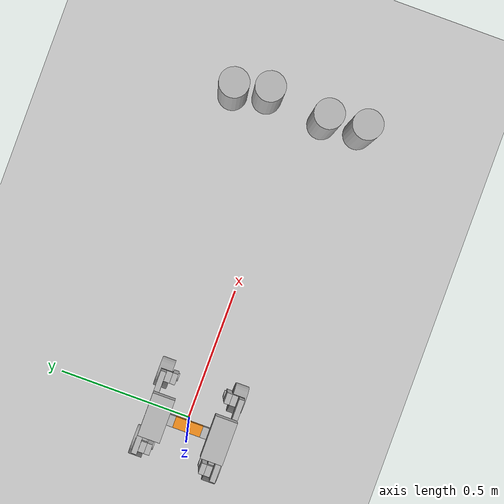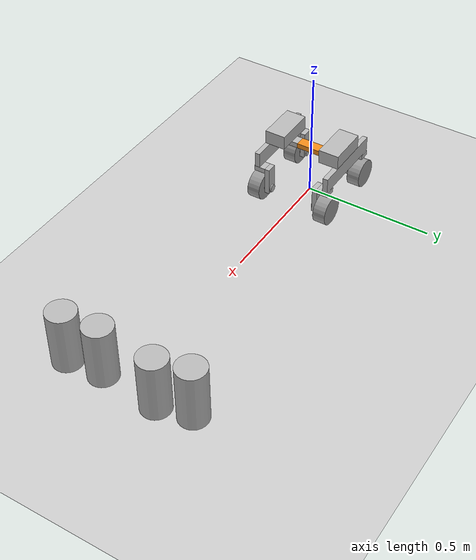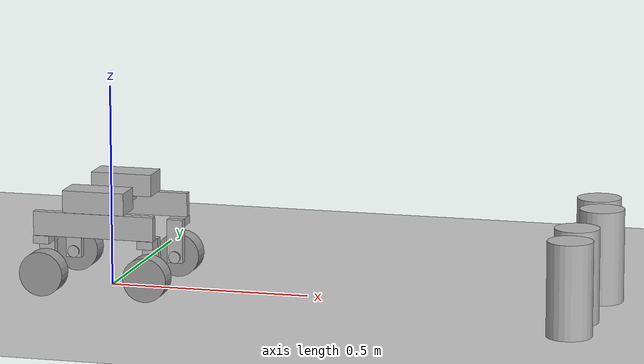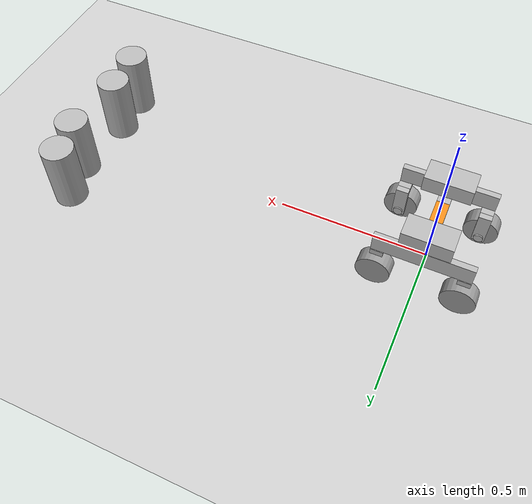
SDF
<sdf version="1.7">
 <world name="default">
  <light name="sun" type="directional">
   <pose>0 0 10 0 -0 0</pose>
   <diffuse>0.8 0.8 0.8 1</diffuse>
   <specular>0.2 0.2 0.2 1</specular>
   <attenuation>
    <range>1000</range>
    <constant>0.9</constant>
    <linear>0.01</linear>
    <quadratic>0.001</quadratic>
   </attenuation>
   <direction>-0.5 0.1 -0.9</direction>
   <spot><inner_angle>0</inner_angle><outer_angle>0</outer_angle><falloff>0</falloff></spot>
  </light>
  <model name="ground_plane">
   <static>1</static>
   <link name="link">
    <collision name="collision">
     <geometry><plane><normal>0 0 1</normal><size>100 100</size></plane></geometry>
     <surface>
      <contact><collide_bitmask>65535</collide_bitmask></contact>
      <friction><ode><mu>100</mu><mu2>50</mu2></ode></friction>
     </surface>
    </collision>
    <visual name="visual">
     <cast_shadows>0</cast_shadows>
     <geometry><plane><normal>0 0 1</normal><size>100 100</size></plane></geometry>
     <material>
      <script><uri>file://media/materials/scripts/gazebo.material</uri><name>Gazebo/Grey</name></script>
     </material>
    </visual>
   </link>
  </model>
  <gravity>0 0 -9.8</gravity>
  <magnetic_field>6e-06 2.3e-05 -4.2e-05</magnetic_field>
  <atmosphere type="adiabatic"/>
  <physics type="ode">
   <max_step_size>0.001</max_step_size>
   <real_time_factor>1</real_time_factor>
   <real_time_update_rate>1000</real_time_update_rate>
  </physics>
  <scene><ambient>0.4 0.4 0.4 1</ambient><background>0.7 0.7 0.7 1</background><shadows>1</shadows></scene>
  <spherical_coordinates>
   <surface_model>EARTH_WGS84</surface_model>
   <latitude_deg>0</latitude_deg>
   <longitude_deg>0</longitude_deg>
   <elevation>0</elevation>
   <heading_deg>0</heading_deg>
  </spherical_coordinates>
  <model name="marvin">
   <link name="base_link">
    <inertial>
     <pose>0 0 -0.063421 0 -0 0</pose>
     <mass>19</mass>
     <inertia><ixx>19.3118</ixx><ixy>0</ixy><ixz>0</ixz><iyy>19.2805</iyy><iyz>0</iyz><izz>19.4527</izz></inertia>
    </inertial>
    <collision name="base_link_collision"><geometry><box><size>0.04 0.1 0.02</size></box></geometry></collision>
    <collision name="base_link_fixed_joint_lump__left_shoulder_horizontal_collision_1">
     <pose>0 0.0925 0 0 -0 0</pose>
     <geometry><box><size>0.04 0.085 0.02</size></box></geometry>
    </collision>
    <collision name="base_link_fixed_joint_lump__left_shoulder_box_collision_2">
     <pose>0 0.11375 0.0375 0 -0 0</pose>
     <geometry><box><size>0.155 0.08 0.055</size></box></geometry>
    </collision>
    <collision name="base_link_fixed_joint_lump__left_shoulder_vertical_collision_3">
     <pose>0 0.145 -0.02 0 -0 0</pose>
     <geometry><box><size>0.305 0.02 0.06</size></box></geometry>
    </collision>
    <collision name="base_link_fixed_joint_lump__left_back_caster_horizontal_collision_4">
     <pose>-0.1325 0.135 -0.06 0 -0 0</pose>
     <geometry><box><size>0.04 0.045 0.02</size></box></geometry>
    </collision>
    <collision name="base_link_fixed_joint_lump__left_back_caster_vertical_collision_5">
     <pose>-0.1325 0.1025 -0.105 0 -0 0</pose>
     <geometry><box><size>0.04 0.02 0.11</size></box></geometry>
    </collision>
    <collision name="base_link_fixed_joint_lump__left_back_axle_collision_6">
     <pose>-0.1325 0.1025 -0.145 1.5708 -0 0</pose>
     <geometry><cylinder><length>0.03</length><radius>0.015</radius></cylinder></geometry>
    </collision>
    <collision name="base_link_fixed_joint_lump__left_front_caster_horizontal_collision_7">
     <pose>0.1325 0.135 -0.06 0 -0 0</pose>
     <geometry><box><size>0.04 0.045 0.02</size></box></geometry>
    </collision>
    <collision name="base_link_fixed_joint_lump__left_front_caster_vertical_collision_8">
     <pose>0.1325 0.1025 -0.105 0 -0 0</pose>
     <geometry><box><size>0.04 0.02 0.11</size></box></geometry>
    </collision>
    <collision name="base_link_fixed_joint_lump__left_front_axle_collision_9">
     <pose>0.1325 0.1025 -0.145 1.5708 -0 0</pose>
     <geometry><cylinder><length>0.03</length><radius>0.015</radius></cylinder></geometry>
    </collision>
    <collision name="base_link_fixed_joint_lump__right_shoulder_horizontal_collision_10">
     <pose>0 -0.0925 0 0 -0 0</pose>
     <geometry><box><size>0.04 0.085 0.02</size></box></geometry>
    </collision>
    <collision name="base_link_fixed_joint_lump__right_shoulder_box_collision_11">
     <pose>0 -0.11375 0.0375 0 -0 0</pose>
     <geometry><box><size>0.155 0.08 0.055</size></box></geometry>
    </collision>
    <collision name="base_link_fixed_joint_lump__right_shoulder_vertical_collision_12">
     <pose>0 -0.145 -0.02 0 -0 0</pose>
     <geometry><box><size>0.305 0.02 0.06</size></box></geometry>
    </collision>
    <collision name="base_link_fixed_joint_lump__right_back_caster_horizontal_collision_13">
     <pose>-0.1325 -0.135 -0.06 0 -0 0</pose>
     <geometry><box><size>0.04 0.045 0.02</size></box></geometry>
    </collision>
    <collision name="base_link_fixed_joint_lump__right_back_caster_vertical_collision_14">
     <pose>-0.1325 -0.1025 -0.105 0 -0 0</pose>
     <geometry><box><size>0.04 0.02 0.11</size></box></geometry>
    </collision>
    <collision name="base_link_fixed_joint_lump__right_back_axle_collision_15">
     <pose>-0.1325 -0.1025 -0.145 1.5708 -0 0</pose>
     <geometry><cylinder><length>0.03</length><radius>0.015</radius></cylinder></geometry>
    </collision>
    <collision name="base_link_fixed_joint_lump__right_front_caster_horizontal_collision_16">
     <pose>0.1325 -0.135 -0.06 0 -0 0</pose>
     <geometry><box><size>0.04 0.045 0.02</size></box></geometry>
    </collision>
    <collision name="base_link_fixed_joint_lump__right_front_caster_vertical_collision_17">
     <pose>0.1325 -0.1025 -0.105 0 -0 0</pose>
     <geometry><box><size>0.04 0.02 0.11</size></box></geometry>
    </collision>
    <collision name="base_link_fixed_joint_lump__right_front_axle_collision_18">
     <pose>0.1325 -0.1025 -0.145 1.5708 -0 0</pose>
     <geometry><cylinder><length>0.03</length><radius>0.015</radius></cylinder></geometry>
    </collision>
    <visual name="base_link_visual">
     <geometry><box><size>0.04 0.1 0.02</size></box></geometry>
     <material>
      <script><name>Gazebo/Orange</name><uri>file://media/materials/scripts/gazebo.material</uri></script>
     </material>
    </visual>
    <visual name="base_link_fixed_joint_lump__left_shoulder_horizontal_visual_1">
     <pose>0 0.0925 0 0 -0 0</pose>
     <geometry><box><size>0.04 0.085 0.02</size></box></geometry>
    </visual>
    <visual name="base_link_fixed_joint_lump__left_shoulder_box_visual_2">
     <pose>0 0.11375 0.0375 0 -0 0</pose>
     <geometry><box><size>0.155 0.08 0.055</size></box></geometry>
    </visual>
    <visual name="base_link_fixed_joint_lump__left_shoulder_vertical_visual_3">
     <pose>0 0.145 -0.02 0 -0 0</pose>
     <geometry><box><size>0.305 0.02 0.06</size></box></geometry>
    </visual>
    <visual name="base_link_fixed_joint_lump__left_back_caster_horizontal_visual_4">
     <pose>-0.1325 0.135 -0.06 0 -0 0</pose>
     <geometry><box><size>0.04 0.045 0.02</size></box></geometry>
    </visual>
    <visual name="base_link_fixed_joint_lump__left_back_caster_vertical_visual_5">
     <pose>-0.1325 0.1025 -0.105 0 -0 0</pose>
     <geometry><box><size>0.04 0.02 0.11</size></box></geometry>
    </visual>
    <visual name="base_link_fixed_joint_lump__left_back_axle_visual_6">
     <pose>-0.1325 0.1025 -0.145 1.5708 -0 0</pose>
     <geometry><cylinder><length>0.03</length><radius>0.015</radius></cylinder></geometry>
    </visual>
    <visual name="base_link_fixed_joint_lump__left_front_caster_horizontal_visual_7">
     <pose>0.1325 0.135 -0.06 0 -0 0</pose>
     <geometry><box><size>0.04 0.045 0.02</size></box></geometry>
    </visual>
    <visual name="base_link_fixed_joint_lump__left_front_caster_vertical_visual_8">
     <pose>0.1325 0.1025 -0.105 0 -0 0</pose>
     <geometry><box><size>0.04 0.02 0.11</size></box></geometry>
    </visual>
    <visual name="base_link_fixed_joint_lump__left_front_axle_visual_9">
     <pose>0.1325 0.1025 -0.145 1.5708 -0 0</pose>
     <geometry><cylinder><length>0.03</length><radius>0.015</radius></cylinder></geometry>
    </visual>
    <visual name="base_link_fixed_joint_lump__right_shoulder_horizontal_visual_10">
     <pose>0 -0.0925 0 0 -0 0</pose>
     <geometry><box><size>0.04 0.085 0.02</size></box></geometry>
    </visual>
    <visual name="base_link_fixed_joint_lump__right_shoulder_box_visual_11">
     <pose>0 -0.11375 0.0375 0 -0 0</pose>
     <geometry><box><size>0.155 0.08 0.055</size></box></geometry>
    </visual>
    <visual name="base_link_fixed_joint_lump__right_shoulder_vertical_visual_12">
     <pose>0 -0.145 -0.02 0 -0 0</pose>
     <geometry><box><size>0.305 0.02 0.06</size></box></geometry>
    </visual>
    <visual name="base_link_fixed_joint_lump__right_back_caster_horizontal_visual_13">
     <pose>-0.1325 -0.135 -0.06 0 -0 0</pose>
     <geometry><box><size>0.04 0.045 0.02</size></box></geometry>
    </visual>
    <visual name="base_link_fixed_joint_lump__right_back_caster_vertical_visual_14">
     <pose>-0.1325 -0.1025 -0.105 0 -0 0</pose>
     <geometry><box><size>0.04 0.02 0.11</size></box></geometry>
    </visual>
    <visual name="base_link_fixed_joint_lump__right_back_axle_visual_15">
     <pose>-0.1325 -0.1025 -0.145 1.5708 -0 0</pose>
     <geometry><cylinder><length>0.03</length><radius>0.015</radius></cylinder></geometry>
    </visual>
    <visual name="base_link_fixed_joint_lump__right_front_caster_horizontal_visual_16">
     <pose>0.1325 -0.135 -0.06 0 -0 0</pose>
     <geometry><box><size>0.04 0.045 0.02</size></box></geometry>
    </visual>
    <visual name="base_link_fixed_joint_lump__right_front_caster_vertical_visual_17">
     <pose>0.1325 -0.1025 -0.105 0 -0 0</pose>
     <geometry><box><size>0.04 0.02 0.11</size></box></geometry>
    </visual>
    <visual name="base_link_fixed_joint_lump__right_front_axle_visual_18">
     <pose>0.1325 -0.1025 -0.145 1.5708 -0 0</pose>
     <geometry><cylinder><length>0.03</length><radius>0.015</radius></cylinder></geometry>
    </visual>
   </link>
   <joint name="left_back_wheel_joint" type="revolute">
    <pose relative_to="base_link">-0.1325 0.1415 -0.145 0 -0 0</pose>
    <parent>base_link</parent>
    <child>left_back_wheel_link</child>
    <axis>
     <xyz>0 1 0</xyz>
     <limit><lower>-1e+16</lower><upper>1e+16</upper></limit>
     <dynamics><spring_reference>0</spring_reference><spring_stiffness>0</spring_stiffness></dynamics>
    </axis>
   </joint>
   <link name="left_back_wheel_link">
    <pose relative_to="left_back_wheel_joint">0 0 0 0 -0 0</pose>
    <inertial>
     <mass>1</mass>
     <inertia><ixx>1</ixx><ixy>0</ixy><ixz>0</ixz><iyy>1</iyy><iyz>0</iyz><izz>1</izz></inertia>
    </inertial>
    <collision name="left_back_wheel_link_collision">
     <pose>0 0 0 1.5708 -0 0</pose>
     <geometry><cylinder><length>0.05</length><radius>0.055</radius></cylinder></geometry>
     <surface>
      <contact><ode><kp>1e+06</kp><kd>1</kd></ode></contact>
      <friction><ode><mu>200</mu><mu2>100</mu2></ode></friction>
     </surface>
    </collision>
    <visual name="left_back_wheel_link_visual">
     <pose>0 0 0 1.5708 -0 0</pose>
     <geometry><cylinder><length>0.05</length><radius>0.055</radius></cylinder></geometry>
     <material>
      <script><name>Gazebo/Grey</name><uri>file://media/materials/scripts/gazebo.material</uri></script>
     </material>
    </visual>
   </link>
   <joint name="left_front_wheel_joint" type="revolute">
    <pose relative_to="base_link">0.1325 0.1415 -0.145 0 -0 0</pose>
    <parent>base_link</parent>
    <child>left_front_wheel_link</child>
    <axis>
     <xyz>0 1 0</xyz>
     <limit><lower>-1e+16</lower><upper>1e+16</upper></limit>
     <dynamics><spring_reference>0</spring_reference><spring_stiffness>0</spring_stiffness></dynamics>
    </axis>
   </joint>
   <link name="left_front_wheel_link">
    <pose relative_to="left_front_wheel_joint">0 0 0 0 -0 0</pose>
    <inertial>
     <mass>1</mass>
     <inertia><ixx>1</ixx><ixy>0</ixy><ixz>0</ixz><iyy>1</iyy><iyz>0</iyz><izz>1</izz></inertia>
    </inertial>
    <collision name="left_front_wheel_link_collision">
     <pose>0 0 0 1.5708 -0 0</pose>
     <geometry><cylinder><length>0.05</length><radius>0.055</radius></cylinder></geometry>
     <surface>
      <contact><ode><kp>1e+06</kp><kd>1</kd></ode></contact>
      <friction><ode><mu>200</mu><mu2>100</mu2></ode></friction>
     </surface>
    </collision>
    <visual name="left_front_wheel_link_visual">
     <pose>0 0 0 1.5708 -0 0</pose>
     <geometry><cylinder><length>0.05</length><radius>0.055</radius></cylinder></geometry>
     <material>
      <script><name>Gazebo/Grey</name><uri>file://media/materials/scripts/gazebo.material</uri></script>
     </material>
    </visual>
   </link>
   <joint name="right_back_wheel_joint" type="revolute">
    <pose relative_to="base_link">-0.1325 -0.1415 -0.145 0 -0 0</pose>
    <parent>base_link</parent>
    <child>right_back_wheel_link</child>
    <axis>
     <xyz>0 1 0</xyz>
     <limit><lower>-1e+16</lower><upper>1e+16</upper></limit>
     <dynamics><spring_reference>0</spring_reference><spring_stiffness>0</spring_stiffness></dynamics>
    </axis>
   </joint>
   <link name="right_back_wheel_link">
    <pose relative_to="right_back_wheel_joint">0 0 0 0 -0 0</pose>
    <inertial>
     <mass>1</mass>
     <inertia><ixx>1</ixx><ixy>0</ixy><ixz>0</ixz><iyy>1</iyy><iyz>0</iyz><izz>1</izz></inertia>
    </inertial>
    <collision name="right_back_wheel_link_collision">
     <pose>0 0 0 1.5708 -0 0</pose>
     <geometry><cylinder><length>0.05</length><radius>0.055</radius></cylinder></geometry>
     <surface>
      <contact><ode><kp>1e+06</kp><kd>1</kd></ode></contact>
      <friction><ode><mu>200</mu><mu2>100</mu2></ode></friction>
     </surface>
    </collision>
    <visual name="right_back_wheel_link_visual">
     <pose>0 0 0 1.5708 -0 0</pose>
     <geometry><cylinder><length>0.05</length><radius>0.055</radius></cylinder></geometry>
     <material>
      <script><name>Gazebo/Grey</name><uri>file://media/materials/scripts/gazebo.material</uri></script>
     </material>
    </visual>
   </link>
   <joint name="right_front_wheel_joint" type="revolute">
    <pose relative_to="base_link">0.1325 -0.1415 -0.145 0 -0 0</pose>
    <parent>base_link</parent>
    <child>right_front_wheel_link</child>
    <axis>
     <xyz>0 1 0</xyz>
     <limit><lower>-1e+16</lower><upper>1e+16</upper></limit>
     <dynamics><spring_reference>0</spring_reference><spring_stiffness>0</spring_stiffness></dynamics>
    </axis>
   </joint>
   <link name="right_front_wheel_link">
    <pose relative_to="right_front_wheel_joint">0 0 0 0 -0 0</pose>
    <inertial>
     <mass>1</mass>
     <inertia><ixx>1</ixx><ixy>0</ixy><ixz>0</ixz><iyy>1</iyy><iyz>0</iyz><izz>1</izz></inertia>
    </inertial>
    <collision name="right_front_wheel_link_collision">
     <pose>0 0 0 1.5708 -0 0</pose>
     <geometry><cylinder><length>0.05</length><radius>0.055</radius></cylinder></geometry>
     <surface>
      <contact><ode><kp>1e+06</kp><kd>1</kd></ode></contact>
      <friction><ode><mu>200</mu><mu2>100</mu2></ode></friction>
     </surface>
    </collision>
    <visual name="right_front_wheel_link_visual">
     <pose>0 0 0 1.5708 -0 0</pose>
     <geometry><cylinder><length>0.05</length><radius>0.055</radius></cylinder></geometry>
     <material>
      <script><name>Gazebo/Grey</name><uri>file://media/materials/scripts/gazebo.material</uri></script>
     </material>
    </visual>
   </link>
   <static>0</static>
   <plugin name="skid_steer_drive_controller" filename="libgazebo_ros_skid_steer_drive.so">
    <updateRate>20.0</updateRate>
    <robotNamespace>/marvin</robotNamespace>
    <leftFrontJoint>left_front_wheel_joint</leftFrontJoint>
    <rightFrontJoint>right_front_wheel_joint</rightFrontJoint>
    <leftRearJoint>left_back_wheel_joint</leftRearJoint>
    <rightRearJoint>right_back_wheel_joint</rightRearJoint>
    <wheelSeparation>0.13</wheelSeparation>
    <wheelDiameter>0.110</wheelDiameter>
    <robotBaseFrame>base_link</robotBaseFrame>
    <torque>10</torque>
    <topicName>cmd_vel</topicName>
    <odometryTopic>odom</odometryTopic>
    <odometryFrame>odom</odometryFrame>
    <commandTopic>cmd_vel</commandTopic>
    <topic_name_twist>cmd_vel</topic_name_twist>
    <topic_name_odometry>odom</topic_name_odometry>
    <topic_name_joint>joint</topic_name_joint>
    <broadcastTF>1</broadcastTF>
    <covariance_x>0.0001</covariance_x>
    <covariance_y>0.0001</covariance_y>
    <covariance_yaw>0.01</covariance_yaw>
   </plugin>
   <pose>1.8e-05 0 0.199921 0 -0 0</pose>
  </model>
  <model name="beer">
   <link name="link">
    <pose>0 0 0.115 0 -0 0</pose>
    <inertial>
     <mass>0.39</mass>
     <inertia><ixx>0.00058</ixx><ixy>0</ixy><ixz>0</ixz><iyy>0.00058</iyy><iyz>0</iyz><izz>0.00019</izz></inertia>
    </inertial>
    <collision name="collision">
     <geometry><cylinder><radius>0.055</radius><length>0.23</length></cylinder></geometry>
    </collision>
    <visual name="visual">
     <geometry><cylinder><radius>0.055</radius><length>0.23</length></cylinder></geometry>
     <material>
      <script>
       <uri>model://beer/materials/scripts</uri>
       <uri>model://beer/materials/textures</uri>
       <name>Beer/Diffuse</name>
      </script>
     </material>
    </visual>
   </link>
   <pose>1.2051 0.134546 -2e-06 1e-06 -0 -5e-06</pose>
  </model>
  <model name="beer_clone">
   <link name="link">
    <pose>0 0 0.115 0 -0 0</pose>
    <inertial>
     <mass>0.39</mass>
     <inertia><ixx>0.00058</ixx><ixy>0</ixy><ixz>0</ixz><iyy>0.00058</iyy><iyz>0</iyz><izz>0.00019</izz></inertia>
    </inertial>
    <collision name="collision">
     <geometry><cylinder><radius>0.055</radius><length>0.23</length></cylinder></geometry>
    </collision>
    <visual name="visual">
     <geometry><cylinder><radius>0.055</radius><length>0.23</length></cylinder></geometry>
     <material>
      <script>
       <uri>model://beer/materials/scripts</uri>
       <uri>model://beer/materials/textures</uri>
       <name>Beer/Diffuse</name>
      </script>
     </material>
    </visual>
   </link>
   <pose>1.18603 -0.08866 -7e-06 0 0 -5e-06</pose>
  </model>
  <model name="beer_clone_0">
   <link name="link">
    <pose>0 0 0.115 0 -0 0</pose>
    <inertial>
     <mass>0.39</mass>
     <inertia><ixx>0.00058</ixx><ixy>0</ixy><ixz>0</ixz><iyy>0.00058</iyy><iyz>0</iyz><izz>0.00019</izz></inertia>
    </inertial>
    <collision name="collision">
     <geometry><cylinder><radius>0.055</radius><length>0.23</length></cylinder></geometry>
    </collision>
    <visual name="visual">
     <geometry><cylinder><radius>0.055</radius><length>0.23</length></cylinder></geometry>
     <material>
      <script>
       <uri>model://beer/materials/scripts</uri>
       <uri>model://beer/materials/textures</uri>
       <name>Beer/Diffuse</name>
      </script>
     </material>
    </visual>
   </link>
   <pose>1.19647 -0.226581 -7e-06 -1e-06 -0 -5e-06</pose>
  </model>
  <model name="beer_clone_1">
   <link name="link">
    <pose>0 0 0.115 0 -0 0</pose>
    <inertial>
     <mass>0.39</mass>
     <inertia><ixx>0.00058</ixx><ixy>0</ixy><ixz>0</ixz><iyy>0.00058</iyy><iyz>0</iyz><izz>0.00019</izz></inertia>
    </inertial>
    <collision name="collision">
     <geometry><cylinder><radius>0.055</radius><length>0.23</length></cylinder></geometry>
    </collision>
    <visual name="visual">
     <geometry><cylinder><radius>0.055</radius><length>0.23</length></cylinder></geometry>
     <material>
      <script>
       <uri>model://beer/materials/scripts</uri>
       <uri>model://beer/materials/textures</uri>
       <name>Beer/Diffuse</name>
      </script>
     </material>
    </visual>
   </link>
   <pose>1.17499 0.257693 -7e-06 -1e-06 -0 -5e-06</pose>
  </model>
 </world>
</sdf>
